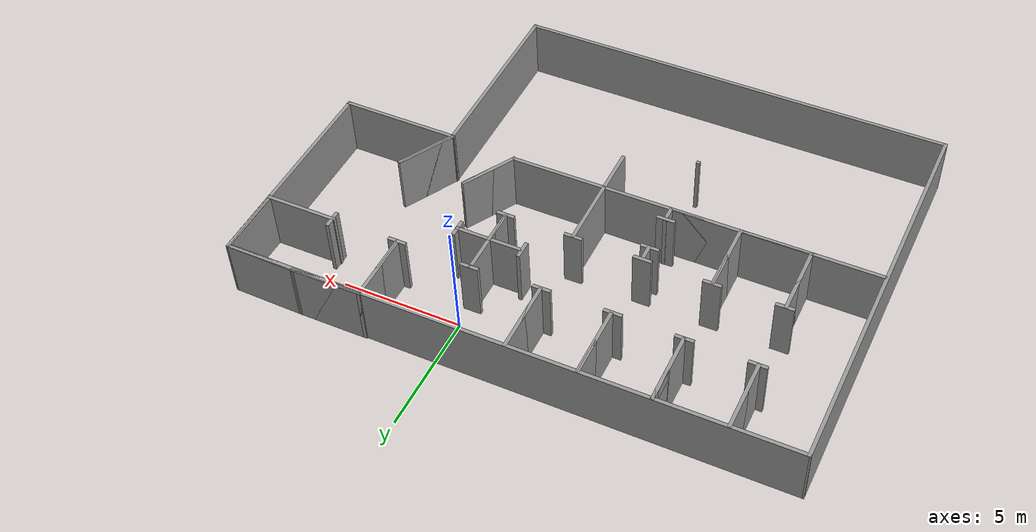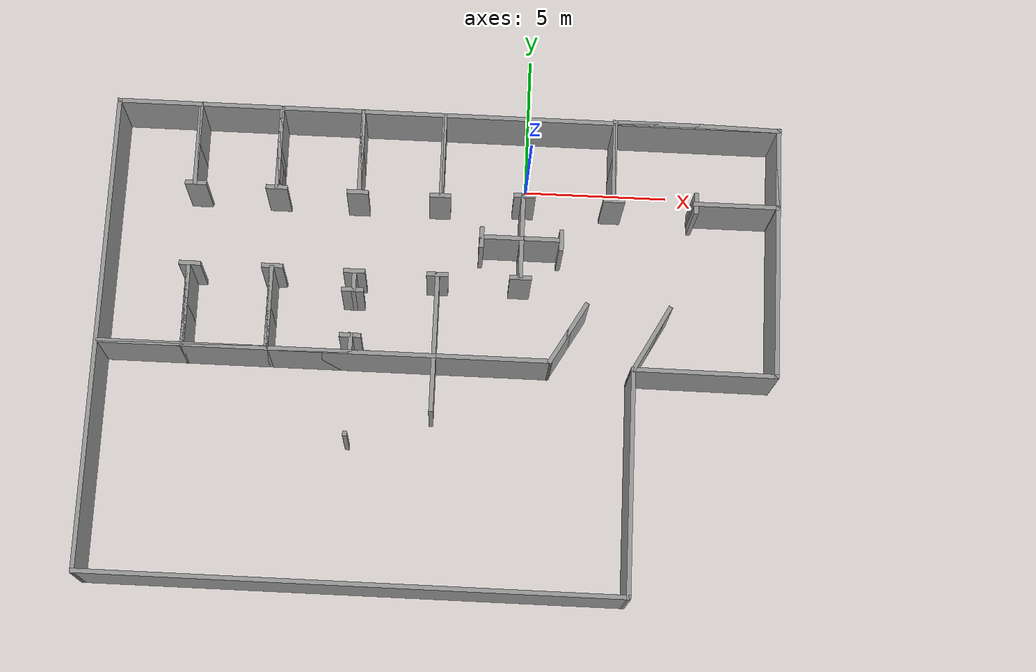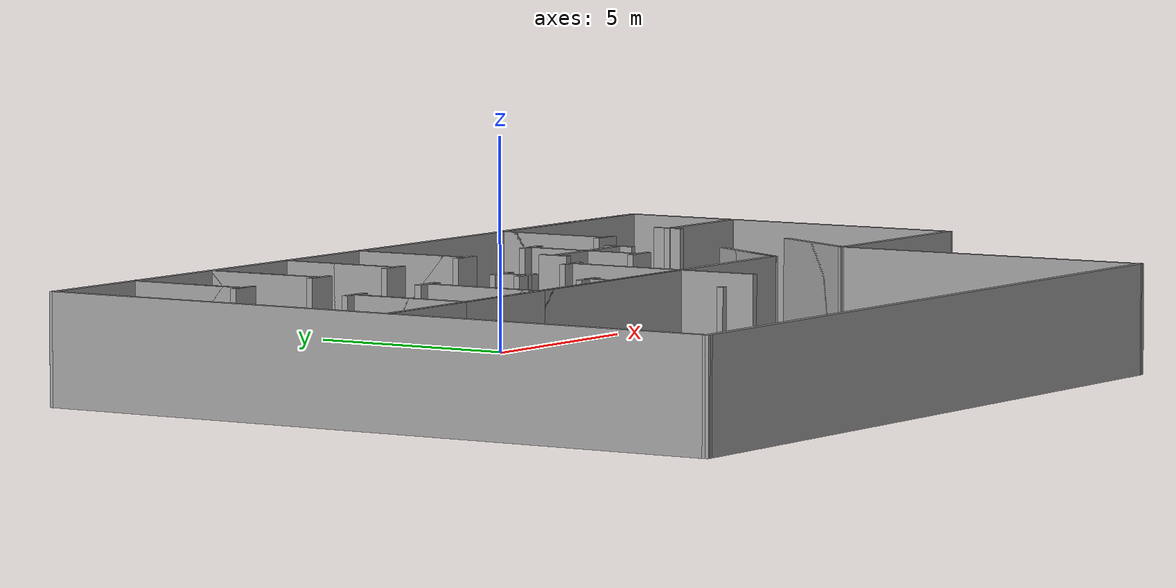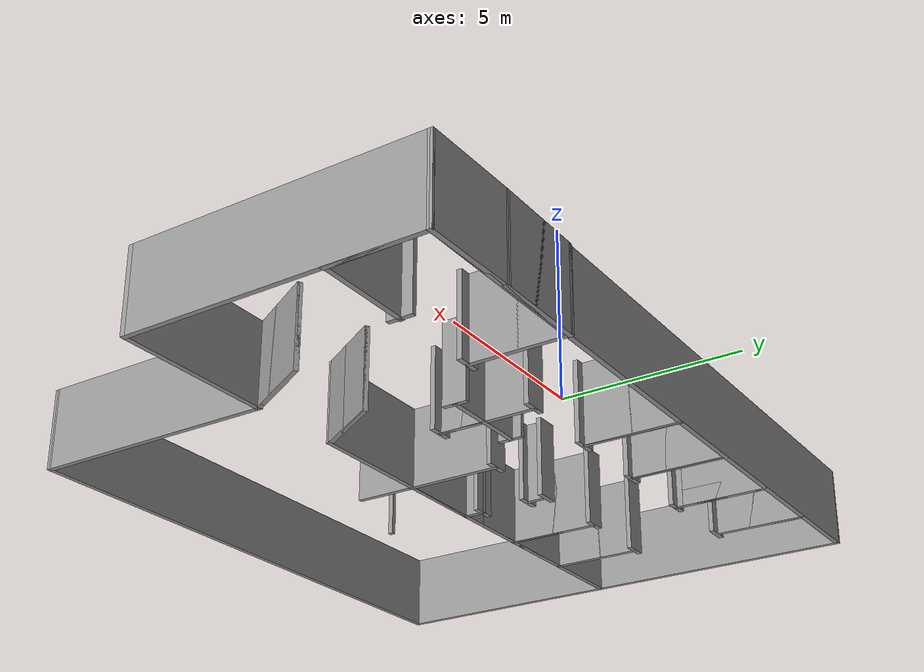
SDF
<?xml version='1.0'?>
<sdf version='1.7'>
  <model name='test_office'>
    <pose>-2.93967 -6.34863 0 0 -0 0</pose>
    <link name='Wall_10'>
      <collision name='Wall_10_Collision'>
        <geometry>
          <box>
            <size>3 0.15 2.5</size>
          </box>
        </geometry>
        <pose>0 0 1.25 0 -0 0</pose>
      </collision>
      <visual name='Wall_10_Visual'>
        <pose>0 0 1.25 0 -0 0</pose>
        <geometry>
          <box>
            <size>3 0.15 2.5</size>
          </box>
        </geometry>
        <material>
          <script>
            <uri>file://media/materials/scripts/gazebo.material</uri>
            <name>Gazebo/Grey</name>
          </script>
          <ambient>1 1 1 1</ambient>
        </material>
        <meta>
          <layer>0</layer>
        </meta>
      </visual>
      <pose>-8.61983 6.80013 0 0 -0 -1.5708</pose>
    </link>
    <link name='Wall_106'>
      <collision name='Wall_106_Collision'>
        <geometry>
          <box>
            <size>3.00965 0.15 2.5</size>
          </box>
        </geometry>
        <pose>0 0 1.25 0 -0 0</pose>
      </collision>
      <visual name='Wall_106_Visual'>
        <pose>0 0 1.25 0 -0 0</pose>
        <geometry>
          <box>
            <size>3.00965 0.15 2.5</size>
          </box>
        </geometry>
        <material>
          <script>
            <uri>file://media/materials/scripts/gazebo.material</uri>
            <name>Gazebo/Grey</name>
          </script>
          <ambient>1 1 1 1</ambient>
        </material>
        <meta>
          <layer>0</layer>
        </meta>
      </visual>
      <pose>10.1746 8.24774 0 0 -0 3.12244</pose>
    </link>
    <link name='Wall_11'>
      <collision name='Wall_11_Collision'>
        <geometry>
          <box>
            <size>3 0.15 2.5</size>
          </box>
        </geometry>
        <pose>0 0 1.25 0 -0 0</pose>
      </collision>
      <visual name='Wall_11_Visual'>
        <pose>0 0 1.25 0 -0 0</pose>
        <geometry>
          <box>
            <size>3 0.15 2.5</size>
          </box>
        </geometry>
        <material>
          <script>
            <uri>file://media/materials/scripts/gazebo.material</uri>
            <name>Gazebo/Grey</name>
          </script>
          <ambient>1 1 1 1</ambient>
        </material>
        <meta>
          <layer>0</layer>
        </meta>
      </visual>
      <pose>-8.61983 6.80013 0 0 -0 1.5708</pose>
    </link>
    <link name='Wall_114'>
      <collision name='Wall_114_Collision'>
        <geometry>
          <box>
            <size>7.85634 0.15 2.5</size>
          </box>
        </geometry>
        <pose>0 0 1.25 0 -0 0</pose>
      </collision>
      <visual name='Wall_114_Visual'>
        <pose>0 0 1.25 0 -0 0</pose>
        <geometry>
          <box>
            <size>7.85634 0.15 2.5</size>
          </box>
        </geometry>
        <material>
          <script>
            <uri>file://media/materials/scripts/gazebo.material</uri>
            <name>Gazebo/Grey</name>
          </script>
          <ambient>1 1 1 1</ambient>
        </material>
        <meta>
          <layer>0</layer>
        </meta>
      </visual>
      <pose>6.73701 -4.42285 0 0 -0 -1.56872</pose>
    </link>
    <link name='Wall_115'>
      <collision name='Wall_115_Collision'>
        <geometry>
          <box>
            <size>18.5 0.15 2.5</size>
          </box>
        </geometry>
        <pose>0 0 1.25 0 -0 0</pose>
      </collision>
      <visual name='Wall_115_Visual'>
        <pose>0 0 1.25 0 -0 0</pose>
        <geometry>
          <box>
            <size>18.5 0.15 2.5</size>
          </box>
        </geometry>
        <material>
          <script>
            <uri>file://media/materials/scripts/gazebo.material</uri>
            <name>Gazebo/Grey</name>
          </script>
          <ambient>1 1 1 1</ambient>
        </material>
        <meta>
          <layer>0</layer>
        </meta>
      </visual>
      <pose>-2.43001 -8.27601 0 0 -0 3.14159</pose>
    </link>
    <link name='Wall_118'>
      <collision name='Wall_118_Collision'>
        <geometry>
          <box>
            <size>3 0.15 2.5</size>
          </box>
        </geometry>
        <pose>0 0 1.25 0 -0 0</pose>
      </collision>
      <visual name='Wall_118_Visual'>
        <pose>0 0 1.25 0 -0 0</pose>
        <geometry>
          <box>
            <size>3 0.15 2.5</size>
          </box>
        </geometry>
        <material>
          <script>
            <uri>file://media/materials/scripts/gazebo.material</uri>
            <name>Gazebo/Grey</name>
          </script>
          <ambient>1 1 1 1</ambient>
        </material>
        <meta>
          <layer>0</layer>
        </meta>
      </visual>
      <pose>7.31999 8.27512 0 0 -0 3.14159</pose>
    </link>
    <link name='Wall_119'>
      <collision name='Wall_119_Collision'>
        <geometry>
          <box>
            <size>3 0.15 2.5</size>
          </box>
        </geometry>
        <pose>0 0 1.25 0 -0 0</pose>
      </collision>
      <visual name='Wall_119_Visual'>
        <pose>0 0 1.25 0 -0 0</pose>
        <geometry>
          <box>
            <size>3 0.15 2.5</size>
          </box>
        </geometry>
        <material>
          <script>
            <uri>file://media/materials/scripts/gazebo.material</uri>
            <name>Gazebo/Grey</name>
          </script>
          <ambient>1 1 1 1</ambient>
        </material>
        <meta>
          <layer>0</layer>
        </meta>
      </visual>
      <pose>5.89499 6.85013 0 0 -0 -1.5708</pose>
    </link>
    <link name='Wall_120'>
      <collision name='Wall_120_Collision'>
        <geometry>
          <box>
            <size>3 0.15 2.5</size>
          </box>
        </geometry>
        <pose>0 0 1.25 0 -0 0</pose>
      </collision>
      <visual name='Wall_120_Visual'>
        <pose>0 0 1.25 0 -0 0</pose>
        <geometry>
          <box>
            <size>3 0.15 2.5</size>
          </box>
        </geometry>
        <material>
          <script>
            <uri>file://media/materials/scripts/gazebo.material</uri>
            <name>Gazebo/Grey</name>
          </script>
          <ambient>1 1 1 1</ambient>
        </material>
        <meta>
          <layer>0</layer>
        </meta>
      </visual>
      <pose>5.89499 6.85013 0 0 -0 1.5708</pose>
    </link>
    <link name='Wall_121'>
      <collision name='Wall_121_Collision'>
        <geometry>
          <box>
            <size>3 0.15 2.5</size>
          </box>
        </geometry>
        <pose>0 0 1.25 0 -0 0</pose>
      </collision>
      <visual name='Wall_121_Visual'>
        <pose>0 0 1.25 0 -0 0</pose>
        <geometry>
          <box>
            <size>3 0.15 2.5</size>
          </box>
        </geometry>
        <material>
          <script>
            <uri>file://media/materials/scripts/gazebo.material</uri>
            <name>Gazebo/Grey</name>
          </script>
          <ambient>1 1 1 1</ambient>
        </material>
        <meta>
          <layer>0</layer>
        </meta>
      </visual>
      <pose>7.31999 8.27512 0 0 -0 0</pose>
    </link>
    <link name='Wall_129'>
      <collision name='Wall_129_Collision'>
        <geometry>
          <box>
            <size>2.98209 0.15 2.5</size>
          </box>
        </geometry>
        <pose>0 0 1.25 0 -0 0</pose>
      </collision>
      <visual name='Wall_129_Visual'>
        <pose>0 0 1.25 0 -0 0</pose>
        <geometry>
          <box>
            <size>2.98209 0.15 2.5</size>
          </box>
        </geometry>
        <material>
          <script>
            <uri>file://media/materials/scripts/gazebo.material</uri>
            <name>Gazebo/Grey</name>
          </script>
          <ambient>1 1 1 1</ambient>
        </material>
        <meta>
          <layer>0</layer>
        </meta>
      </visual>
      <pose>11.5904 6.80438 0 0 -0 -1.5805</pose>
    </link>
    <link name='Wall_13'>
      <collision name='Wall_13_Collision'>
        <geometry>
          <box>
            <size>3 0.15 2.5</size>
          </box>
        </geometry>
        <pose>0 0 1.25 0 -0 0</pose>
      </collision>
      <visual name='Wall_13_Visual'>
        <pose>0 0 1.25 0 -0 0</pose>
        <geometry>
          <box>
            <size>3 0.15 2.5</size>
          </box>
        </geometry>
        <material>
          <script>
            <uri>file://media/materials/scripts/gazebo.material</uri>
            <name>Gazebo/Grey</name>
          </script>
          <ambient>1 1 1 1</ambient>
        </material>
        <meta>
          <layer>0</layer>
        </meta>
      </visual>
      <pose>-5.76983 6.80013 0 0 -0 -1.5708</pose>
    </link>
    <link name='Wall_130'>
      <collision name='Wall_130_Collision'>
        <geometry>
          <box>
            <size>3 0.15 2.5</size>
          </box>
        </geometry>
        <pose>0 0 1.25 0 -0 0</pose>
      </collision>
      <visual name='Wall_130_Visual'>
        <pose>0 0 1.25 0 -0 0</pose>
        <geometry>
          <box>
            <size>3 0.15 2.5</size>
          </box>
        </geometry>
        <material>
          <script>
            <uri>file://media/materials/scripts/gazebo.material</uri>
            <name>Gazebo/Grey</name>
          </script>
          <ambient>1 1 1 1</ambient>
        </material>
        <meta>
          <layer>0</layer>
        </meta>
      </visual>
      <pose>10.1516 5.40677 0 0 -0 3.14159</pose>
    </link>
    <link name='Wall_134'>
      <collision name='Wall_134_Collision'>
        <geometry>
          <box>
            <size>0.75 0.15 2.5</size>
          </box>
        </geometry>
        <pose>0 0 1.25 0 -0 0</pose>
      </collision>
      <visual name='Wall_134_Visual'>
        <pose>0 0 1.25 0 -0 0</pose>
        <geometry>
          <box>
            <size>0.75 0.15 2.5</size>
          </box>
        </geometry>
        <material>
          <script>
            <uri>file://media/materials/scripts/gazebo.material</uri>
            <name>Gazebo/Grey</name>
          </script>
          <ambient>1 1 1 1</ambient>
        </material>
        <meta>
          <layer>0</layer>
        </meta>
      </visual>
      <pose>-8.58936 5.35933 0 0 -0 0</pose>
    </link>
    <link name='Wall_138'>
      <collision name='Wall_138_Collision'>
        <geometry>
          <box>
            <size>0.75 0.15 2.5</size>
          </box>
        </geometry>
        <pose>0 0 1.25 0 -0 0</pose>
      </collision>
      <visual name='Wall_138_Visual'>
        <pose>0 0 1.25 0 -0 0</pose>
        <geometry>
          <box>
            <size>0.75 0.15 2.5</size>
          </box>
        </geometry>
        <material>
          <script>
            <uri>file://media/materials/scripts/gazebo.material</uri>
            <name>Gazebo/Grey</name>
          </script>
          <ambient>1 1 1 1</ambient>
        </material>
        <meta>
          <layer>0</layer>
        </meta>
      </visual>
      <pose>-5.78208 5.32882 0 0 -0 0</pose>
    </link>
    <link name='Wall_14'>
      <pose>-5.76983 6.80013 0 0 -0 1.5708</pose>
      <visual name='Wall_14_Visual_0'>
        <pose>-1.35548 0 1.25 0 -0 0</pose>
        <geometry>
          <box>
            <size>0.289042 0.15 2.5</size>
          </box>
        </geometry>
        <material>
          <script>
            <uri>file://media/materials/scripts/gazebo.material</uri>
            <name>Gazebo/Grey</name>
          </script>
          <ambient>1 1 1 1</ambient>
        </material>
        <meta>
          <layer>0</layer>
        </meta>
      </visual>
      <collision name='Wall_14_Collision_0'>
        <geometry>
          <box>
            <size>0.289042 0.15 2.5</size>
          </box>
        </geometry>
        <pose>-1.35548 0 1.25 0 -0 0</pose>
      </collision>
      <visual name='Wall_14_Visual_1'>
        <pose>1.28988 0 1.25 0 -0 0</pose>
        <geometry>
          <box>
            <size>0.42023 0.15 2.5</size>
          </box>
        </geometry>
        <material>
          <script>
            <uri>file://media/materials/scripts/gazebo.material</uri>
            <name>Gazebo/Grey</name>
          </script>
          <ambient>1 1 1 1</ambient>
        </material>
        <meta>
          <layer>0</layer>
        </meta>
      </visual>
      <collision name='Wall_14_Collision_1'>
        <geometry>
          <box>
            <size>0.42023 0.15 2.5</size>
          </box>
        </geometry>
        <pose>1.28988 0 1.25 0 -0 0</pose>
      </collision>
      <visual name='Wall_14_Visual_2'>
        <pose>-0.515594 0 0.25 0 -0 0</pose>
        <geometry>
          <box>
            <size>1.39073 0.15 0.5</size>
          </box>
        </geometry>
        <material>
          <script>
            <uri>file://media/materials/scripts/gazebo.material</uri>
            <name>Gazebo/Grey</name>
          </script>
          <ambient>1 1 1 1</ambient>
        </material>
        <meta>
          <layer>0</layer>
        </meta>
      </visual>
      <collision name='Wall_14_Collision_2'>
        <geometry>
          <box>
            <size>1.39073 0.15 0.5</size>
          </box>
        </geometry>
        <pose>-0.515594 0 0.25 0 -0 0</pose>
      </collision>
      <visual name='Wall_14_Visual_3'>
        <pose>-0.115594 0 1.5 0 -0 0</pose>
        <geometry>
          <box>
            <size>0.590728 0.15 2</size>
          </box>
        </geometry>
        <material>
          <script>
            <uri>file://media/materials/scripts/gazebo.material</uri>
            <name>Gazebo/Grey</name>
          </script>
          <ambient>1 1 1 1</ambient>
        </material>
        <meta>
          <layer>0</layer>
        </meta>
      </visual>
      <collision name='Wall_14_Collision_3'>
        <geometry>
          <box>
            <size>0.590728 0.15 2</size>
          </box>
        </geometry>
        <pose>-0.115594 0 1.5 0 -0 0</pose>
      </collision>
      <visual name='Wall_14_Visual_4'>
        <pose>-0.810958 0 1.9 0 -0 0</pose>
        <geometry>
          <box>
            <size>0.8 0.15 1.2</size>
          </box>
        </geometry>
        <material>
          <script>
            <uri>file://media/materials/scripts/gazebo.material</uri>
            <name>Gazebo/Grey</name>
          </script>
          <ambient>1 1 1 1</ambient>
        </material>
        <meta>
          <layer>0</layer>
        </meta>
      </visual>
      <collision name='Wall_14_Collision_4'>
        <geometry>
          <box>
            <size>0.8 0.15 1.2</size>
          </box>
        </geometry>
        <pose>-0.810958 0 1.9 0 -0 0</pose>
      </collision>
      <visual name='Wall_14_Visual_5'>
        <pose>0.62977 0 2.25 0 -0 0</pose>
        <geometry>
          <box>
            <size>0.9 0.15 0.5</size>
          </box>
        </geometry>
        <material>
          <script>
            <uri>file://media/materials/scripts/gazebo.material</uri>
            <name>Gazebo/Grey</name>
          </script>
          <ambient>1 1 1 1</ambient>
        </material>
        <meta>
          <layer>0</layer>
        </meta>
      </visual>
      <collision name='Wall_14_Collision_5'>
        <geometry>
          <box>
            <size>0.9 0.15 0.5</size>
          </box>
        </geometry>
        <pose>0.62977 0 2.25 0 -0 0</pose>
      </collision>
    </link>
    <link name='Wall_143'>
      <collision name='Wall_143_Collision'>
        <geometry>
          <box>
            <size>0.75 0.15 2.5</size>
          </box>
        </geometry>
        <pose>0 0 1.25 0 -0 0</pose>
      </collision>
      <visual name='Wall_143_Visual'>
        <pose>0 0 1.25 0 -0 0</pose>
        <geometry>
          <box>
            <size>0.75 0.15 2.5</size>
          </box>
        </geometry>
        <material>
          <script>
            <uri>file://media/materials/scripts/gazebo.material</uri>
            <name>Gazebo/Grey</name>
          </script>
          <ambient>1 1 1 1</ambient>
        </material>
        <meta>
          <layer>0</layer>
        </meta>
      </visual>
      <pose>-5.74128 2.49102 0 0 -0 3.14159</pose>
    </link>
    <link name='Wall_145'>
      <collision name='Wall_145_Collision'>
        <geometry>
          <box>
            <size>0.75 0.15 2.5</size>
          </box>
        </geometry>
        <pose>0 0 1.25 0 -0 0</pose>
      </collision>
      <visual name='Wall_145_Visual'>
        <pose>0 0 1.25 0 -0 0</pose>
        <geometry>
          <box>
            <size>0.75 0.15 2.5</size>
          </box>
        </geometry>
        <material>
          <script>
            <uri>file://media/materials/scripts/gazebo.material</uri>
            <name>Gazebo/Grey</name>
          </script>
          <ambient>1 1 1 1</ambient>
        </material>
        <meta>
          <layer>0</layer>
        </meta>
      </visual>
      <pose>-8.56891 2.45033 0 0 -0 3.14159</pose>
    </link>
    <link name='Wall_148'>
      <collision name='Wall_148_Collision'>
        <geometry>
          <box>
            <size>0.75 0.15 2.5</size>
          </box>
        </geometry>
        <pose>0 0 1.25 0 -0 0</pose>
      </collision>
      <visual name='Wall_148_Visual'>
        <pose>0 0 1.25 0 -0 0</pose>
        <geometry>
          <box>
            <size>0.75 0.15 2.5</size>
          </box>
        </geometry>
        <material>
          <script>
            <uri>file://media/materials/scripts/gazebo.material</uri>
            <name>Gazebo/Grey</name>
          </script>
          <ambient>1 1 1 1</ambient>
        </material>
        <meta>
          <layer>0</layer>
        </meta>
      </visual>
      <pose>-2.96629 5.28715 0 0 -0 3.14159</pose>
    </link>
    <link name='Wall_150'>
      <collision name='Wall_150_Collision'>
        <geometry>
          <box>
            <size>0.75 0.15 2.5</size>
          </box>
        </geometry>
        <pose>0 0 1.25 0 -0 0</pose>
      </collision>
      <visual name='Wall_150_Visual'>
        <pose>0 0 1.25 0 -0 0</pose>
        <geometry>
          <box>
            <size>0.75 0.15 2.5</size>
          </box>
        </geometry>
        <material>
          <script>
            <uri>file://media/materials/scripts/gazebo.material</uri>
            <name>Gazebo/Grey</name>
          </script>
          <ambient>1 1 1 1</ambient>
        </material>
        <meta>
          <layer>0</layer>
        </meta>
      </visual>
      <pose>-2.91248 2.43541 0 0 -0 3.14159</pose>
    </link>
    <link name='Wall_152'>
      <collision name='Wall_152_Collision'>
        <geometry>
          <box>
            <size>0.75 0.15 2.5</size>
          </box>
        </geometry>
        <pose>0 0 1.25 0 -0 0</pose>
      </collision>
      <visual name='Wall_152_Visual'>
        <pose>0 0 1.25 0 -0 0</pose>
        <geometry>
          <box>
            <size>0.75 0.15 2.5</size>
          </box>
        </geometry>
        <material>
          <script>
            <uri>file://media/materials/scripts/gazebo.material</uri>
            <name>Gazebo/Grey</name>
          </script>
          <ambient>1 1 1 1</ambient>
        </material>
        <meta>
          <layer>0</layer>
        </meta>
      </visual>
      <pose>-2.92593 0.162097 0 0 -0 3.14159</pose>
    </link>
    <link name='Wall_155'>
      <collision name='Wall_155_Collision'>
        <geometry>
          <box>
            <size>0.75 0.15 2.5</size>
          </box>
        </geometry>
        <pose>0 0 1.25 0 -0 0</pose>
      </collision>
      <visual name='Wall_155_Visual'>
        <pose>0 0 1.25 0 -0 0</pose>
        <geometry>
          <box>
            <size>0.75 0.15 2.5</size>
          </box>
        </geometry>
        <material>
          <script>
            <uri>file://media/materials/scripts/gazebo.material</uri>
            <name>Gazebo/Grey</name>
          </script>
          <ambient>1 1 1 1</ambient>
        </material>
        <meta>
          <layer>0</layer>
        </meta>
      </visual>
      <pose>-2.93938 1.77629 0 0 -0 3.14159</pose>
    </link>
    <link name='Wall_16'>
      <collision name='Wall_16_Collision'>
        <geometry>
          <box>
            <size>3 0.15 2.5</size>
          </box>
        </geometry>
        <pose>0 0 1.25 0 -0 0</pose>
      </collision>
      <visual name='Wall_16_Visual'>
        <pose>0 0 1.25 0 -0 0</pose>
        <geometry>
          <box>
            <size>3 0.15 2.5</size>
          </box>
        </geometry>
        <material>
          <script>
            <uri>file://media/materials/scripts/gazebo.material</uri>
            <name>Gazebo/Grey</name>
          </script>
          <ambient>1 1 1 1</ambient>
        </material>
        <meta>
          <layer>0</layer>
        </meta>
      </visual>
      <pose>-2.91983 6.80013 0 0 -0 -1.5708</pose>
    </link>
    <link name='Wall_160'>
      <collision name='Wall_160_Collision'>
        <geometry>
          <box>
            <size>0.75 0.15 2.5</size>
          </box>
        </geometry>
        <pose>0 0 1.25 0 -0 0</pose>
      </collision>
      <visual name='Wall_160_Visual'>
        <pose>0 0 1.25 0 -0 0</pose>
        <geometry>
          <box>
            <size>0.75 0.15 2.5</size>
          </box>
        </geometry>
        <material>
          <script>
            <uri>file://media/materials/scripts/gazebo.material</uri>
            <name>Gazebo/Grey</name>
          </script>
          <ambient>1 1 1 1</ambient>
        </material>
        <meta>
          <layer>0</layer>
        </meta>
      </visual>
      <pose>-0.098641 5.29849 0 0 -0 3.14159</pose>
    </link>
    <link name='Wall_162'>
      <collision name='Wall_162_Collision'>
        <geometry>
          <box>
            <size>0.75 0.15 2.5</size>
          </box>
        </geometry>
        <pose>0 0 1.25 0 -0 0</pose>
      </collision>
      <visual name='Wall_162_Visual'>
        <pose>0 0 1.25 0 -0 0</pose>
        <geometry>
          <box>
            <size>0.75 0.15 2.5</size>
          </box>
        </geometry>
        <material>
          <script>
            <uri>file://media/materials/scripts/gazebo.material</uri>
            <name>Gazebo/Grey</name>
          </script>
          <ambient>1 1 1 1</ambient>
        </material>
        <meta>
          <layer>0</layer>
        </meta>
      </visual>
      <pose>-0.060403 2.4536 0 0 -0 3.14159</pose>
    </link>
    <link name='Wall_168'>
      <collision name='Wall_168_Collision'>
        <geometry>
          <box>
            <size>0.75 0.15 2.5</size>
          </box>
        </geometry>
        <pose>0 0 1.25 0 -0 0</pose>
      </collision>
      <visual name='Wall_168_Visual'>
        <pose>0 0 1.25 0 -0 0</pose>
        <geometry>
          <box>
            <size>0.75 0.15 2.5</size>
          </box>
        </geometry>
        <material>
          <script>
            <uri>file://media/materials/scripts/gazebo.material</uri>
            <name>Gazebo/Grey</name>
          </script>
          <ambient>1 1 1 1</ambient>
        </material>
        <meta>
          <layer>0</layer>
        </meta>
      </visual>
      <pose>4.14779 3.86837 0 0 -0 -1.5708</pose>
    </link>
    <link name='Wall_17'>
      <collision name='Wall_17_Collision'>
        <geometry>
          <box>
            <size>3 0.15 2.5</size>
          </box>
        </geometry>
        <pose>0 0 1.25 0 -0 0</pose>
      </collision>
      <visual name='Wall_17_Visual'>
        <pose>0 0 1.25 0 -0 0</pose>
        <geometry>
          <box>
            <size>3 0.15 2.5</size>
          </box>
        </geometry>
        <material>
          <script>
            <uri>file://media/materials/scripts/gazebo.material</uri>
            <name>Gazebo/Grey</name>
          </script>
          <ambient>1 1 1 1</ambient>
        </material>
        <meta>
          <layer>0</layer>
        </meta>
      </visual>
      <pose>-2.91983 6.80013 0 0 -0 1.5708</pose>
    </link>
    <link name='Wall_170'>
      <collision name='Wall_170_Collision'>
        <geometry>
          <box>
            <size>0.75 0.15 2.5</size>
          </box>
        </geometry>
        <pose>0 0 1.25 0 -0 0</pose>
      </collision>
      <visual name='Wall_170_Visual'>
        <pose>0 0 1.25 0 -0 0</pose>
        <geometry>
          <box>
            <size>0.75 0.15 2.5</size>
          </box>
        </geometry>
        <material>
          <script>
            <uri>file://media/materials/scripts/gazebo.material</uri>
            <name>Gazebo/Grey</name>
          </script>
          <ambient>1 1 1 1</ambient>
        </material>
        <meta>
          <layer>0</layer>
        </meta>
      </visual>
      <pose>1.39967 3.85525 0 0 -0 -1.5708</pose>
    </link>
    <link name='Wall_173'>
      <collision name='Wall_173_Collision'>
        <geometry>
          <box>
            <size>0.15 0.15 2.5</size>
          </box>
        </geometry>
        <pose>0 0 1.25 0 -0 0</pose>
      </collision>
      <visual name='Wall_173_Visual'>
        <pose>0 0 1.25 0 -0 0</pose>
        <geometry>
          <box>
            <size>0.15 0.15 2.5</size>
          </box>
        </geometry>
        <material>
          <script>
            <uri>file://media/materials/scripts/gazebo.material</uri>
            <name>Gazebo/Grey</name>
          </script>
          <ambient>1 1 1 1</ambient>
        </material>
        <meta>
          <layer>0</layer>
        </meta>
      </visual>
      <pose>2.78017 2.52513 0 0 -0 0</pose>
    </link>
    <link name='Wall_181'>
      <collision name='Wall_181_Collision'>
        <geometry>
          <box>
            <size>0.75 0.15 2.5</size>
          </box>
        </geometry>
        <pose>0 0 1.25 0 -0 0</pose>
      </collision>
      <visual name='Wall_181_Visual'>
        <pose>0 0 1.25 0 -0 0</pose>
        <geometry>
          <box>
            <size>0.75 0.15 2.5</size>
          </box>
        </geometry>
        <material>
          <script>
            <uri>file://media/materials/scripts/gazebo.material</uri>
            <name>Gazebo/Grey</name>
          </script>
          <ambient>1 1 1 1</ambient>
        </material>
        <meta>
          <layer>0</layer>
        </meta>
      </visual>
      <pose>2.82459 5.43211 0 0 -0 0</pose>
    </link>
    <link name='Wall_183'>
      <collision name='Wall_183_Collision'>
        <geometry>
          <box>
            <size>0.75 0.15 2.5</size>
          </box>
        </geometry>
        <pose>0 0 1.25 0 -0 0</pose>
      </collision>
      <visual name='Wall_183_Visual'>
        <pose>0 0 1.25 0 -0 0</pose>
        <geometry>
          <box>
            <size>0.75 0.15 2.5</size>
          </box>
        </geometry>
        <material>
          <script>
            <uri>file://media/materials/scripts/gazebo.material</uri>
            <name>Gazebo/Grey</name>
          </script>
          <ambient>1 1 1 1</ambient>
        </material>
        <meta>
          <layer>0</layer>
        </meta>
      </visual>
      <pose>2.79407 2.47226 0 0 -0 0</pose>
    </link>
    <link name='Wall_187'>
      <collision name='Wall_187_Collision'>
        <geometry>
          <box>
            <size>0.75 0.15 2.5</size>
          </box>
        </geometry>
        <pose>0 0 1.25 0 -0 0</pose>
      </collision>
      <visual name='Wall_187_Visual'>
        <pose>0 0 1.25 0 -0 0</pose>
        <geometry>
          <box>
            <size>0.75 0.15 2.5</size>
          </box>
        </geometry>
        <material>
          <script>
            <uri>file://media/materials/scripts/gazebo.material</uri>
            <name>Gazebo/Grey</name>
          </script>
          <ambient>1 1 1 1</ambient>
        </material>
        <meta>
          <layer>0</layer>
        </meta>
      </visual>
      <pose>5.9249 5.40366 0 0 -0 0</pose>
    </link>
    <link name='Wall_189'>
      <collision name='Wall_189_Collision'>
        <geometry>
          <box>
            <size>0.75 0.15 2.5</size>
          </box>
        </geometry>
        <pose>0 0 1.25 0 -0 0</pose>
      </collision>
      <visual name='Wall_189_Visual'>
        <pose>0 0 1.25 0 -0 0</pose>
        <geometry>
          <box>
            <size>0.75 0.15 2.5</size>
          </box>
        </geometry>
        <material>
          <script>
            <uri>file://media/materials/scripts/gazebo.material</uri>
            <name>Gazebo/Grey</name>
          </script>
          <ambient>1 1 1 1</ambient>
        </material>
        <meta>
          <layer>0</layer>
        </meta>
      </visual>
      <pose>8.76248 5.4265 0 0 -0 -1.5708</pose>
    </link>
    <link name='Wall_19'>
      <collision name='Wall_19_Collision'>
        <geometry>
          <box>
            <size>3 0.15 2.5</size>
          </box>
        </geometry>
        <pose>0 0 1.25 0 -0 0</pose>
      </collision>
      <visual name='Wall_19_Visual'>
        <pose>0 0 1.25 0 -0 0</pose>
        <geometry>
          <box>
            <size>3 0.15 2.5</size>
          </box>
        </geometry>
        <material>
          <script>
            <uri>file://media/materials/scripts/gazebo.material</uri>
            <name>Gazebo/Grey</name>
          </script>
          <ambient>1 1 1 1</ambient>
        </material>
        <meta>
          <layer>0</layer>
        </meta>
      </visual>
      <pose>-0.069829 6.80013 0 0 -0 -1.5708</pose>
    </link>
    <link name='Wall_191'>
      <collision name='Wall_191_Collision'>
        <geometry>
          <box>
            <size>2 0.15 2.5</size>
          </box>
        </geometry>
        <pose>0 0 1.25 0 -0 0</pose>
      </collision>
      <visual name='Wall_191_Visual'>
        <pose>0 0 1.25 0 -0 0</pose>
        <geometry>
          <box>
            <size>2 0.15 2.5</size>
          </box>
        </geometry>
        <material>
          <script>
            <uri>file://media/materials/scripts/gazebo.material</uri>
            <name>Gazebo/Grey</name>
          </script>
          <ambient>1 1 1 1</ambient>
        </material>
        <meta>
          <layer>0</layer>
        </meta>
      </visual>
      <pose>-0.055008 -1.35101 0 0 -0 -1.5708</pose>
    </link>
    <link name='Wall_196'>
      <collision name='Wall_196_Collision'>
        <geometry>
          <box>
            <size>0.15 0.15 2.5</size>
          </box>
        </geometry>
        <pose>0 0 1.25 0 -0 0</pose>
      </collision>
      <visual name='Wall_196_Visual'>
        <pose>0 0 1.25 0 -0 0</pose>
        <geometry>
          <box>
            <size>0.15 0.15 2.5</size>
          </box>
        </geometry>
        <material>
          <script>
            <uri>file://media/materials/scripts/gazebo.material</uri>
            <name>Gazebo/Grey</name>
          </script>
          <ambient>1 1 1 1</ambient>
        </material>
        <meta>
          <layer>0</layer>
        </meta>
      </visual>
      <pose>-2.90501 -3.24809 0 0 -0 0</pose>
    </link>
    <link name='Wall_20'>
      <collision name='Wall_20_Collision'>
        <geometry>
          <box>
            <size>3 0.15 2.5</size>
          </box>
        </geometry>
        <pose>0 0 1.25 0 -0 0</pose>
      </collision>
      <visual name='Wall_20_Visual'>
        <pose>0 0 1.25 0 -0 0</pose>
        <geometry>
          <box>
            <size>3 0.15 2.5</size>
          </box>
        </geometry>
        <material>
          <script>
            <uri>file://media/materials/scripts/gazebo.material</uri>
            <name>Gazebo/Grey</name>
          </script>
          <ambient>1 1 1 1</ambient>
        </material>
        <meta>
          <layer>0</layer>
        </meta>
      </visual>
      <pose>-0.069829 6.80013 0 0 -0 1.5708</pose>
    </link>
    <link name='Wall_205'>
      <collision name='Wall_205_Collision'>
        <geometry>
          <box>
            <size>16.6833 0.15 2.5</size>
          </box>
        </geometry>
        <pose>0 0 1.25 0 -0 0</pose>
      </collision>
      <visual name='Wall_205_Visual'>
        <pose>0 0 1.25 0 -0 0</pose>
        <geometry>
          <box>
            <size>16.6833 0.15 2.5</size>
          </box>
        </geometry>
        <material>
          <script>
            <uri>file://media/materials/scripts/gazebo.material</uri>
            <name>Gazebo/Grey</name>
          </script>
          <ambient>1 1 1 1</ambient>
        </material>
        <meta>
          <layer>0</layer>
        </meta>
      </visual>
      <pose>-11.5459 -0.009572 0 0 -0 1.56364</pose>
    </link>
    <link name='Wall_24'>
      <collision name='Wall_24_Collision'>
        <geometry>
          <box>
            <size>0.15 0.15 2.5</size>
          </box>
        </geometry>
        <pose>0 0 1.25 0 -0 0</pose>
      </collision>
      <visual name='Wall_24_Visual'>
        <pose>0 0 1.25 0 -0 0</pose>
        <geometry>
          <box>
            <size>0.15 0.15 2.5</size>
          </box>
        </geometry>
        <material>
          <script>
            <uri>file://media/materials/scripts/gazebo.material</uri>
            <name>Gazebo/Grey</name>
          </script>
          <ambient>1 1 1 1</ambient>
        </material>
        <meta>
          <layer>0</layer>
        </meta>
      </visual>
      <pose>2.78017 5.40571 0 0 -0 0</pose>
    </link>
    <link name='Wall_25'>
      <collision name='Wall_25_Collision'>
        <geometry>
          <box>
            <size>3.03059 0.15 2.5</size>
          </box>
        </geometry>
        <pose>0 0 1.25 0 -0 0</pose>
      </collision>
      <visual name='Wall_25_Visual'>
        <pose>0 0 1.25 0 -0 0</pose>
        <geometry>
          <box>
            <size>3.03059 0.15 2.5</size>
          </box>
        </geometry>
        <material>
          <script>
            <uri>file://media/materials/scripts/gazebo.material</uri>
            <name>Gazebo/Grey</name>
          </script>
          <ambient>1 1 1 1</ambient>
        </material>
        <meta>
          <layer>0</layer>
        </meta>
      </visual>
      <pose>2.78017 3.96542 0 0 -0 -1.5708</pose>
    </link>
    <link name='Wall_26'>
      <collision name='Wall_26_Collision'>
        <geometry>
          <box>
            <size>1.5 0.15 2.5</size>
          </box>
        </geometry>
        <pose>0 0 1.25 0 -0 0</pose>
      </collision>
      <visual name='Wall_26_Visual'>
        <pose>0 0 1.25 0 -0 0</pose>
        <geometry>
          <box>
            <size>1.5 0.15 2.5</size>
          </box>
        </geometry>
        <material>
          <script>
            <uri>file://media/materials/scripts/gazebo.material</uri>
            <name>Gazebo/Grey</name>
          </script>
          <ambient>1 1 1 1</ambient>
        </material>
        <meta>
          <layer>0</layer>
        </meta>
      </visual>
      <pose>2.78017 3.20012 0 0 -0 1.5708</pose>
    </link>
    <link name='Wall_27'>
      <collision name='Wall_27_Collision'>
        <geometry>
          <box>
            <size>1.5 0.15 2.5</size>
          </box>
        </geometry>
        <pose>0 0 1.25 0 -0 0</pose>
      </collision>
      <visual name='Wall_27_Visual'>
        <pose>0 0 1.25 0 -0 0</pose>
        <geometry>
          <box>
            <size>1.5 0.15 2.5</size>
          </box>
        </geometry>
        <material>
          <script>
            <uri>file://media/materials/scripts/gazebo.material</uri>
            <name>Gazebo/Grey</name>
          </script>
          <ambient>1 1 1 1</ambient>
        </material>
        <meta>
          <layer>0</layer>
        </meta>
      </visual>
      <pose>2.10517 3.87513 0 0 -0 3.14159</pose>
    </link>
    <link name='Wall_29'>
      <collision name='Wall_29_Collision'>
        <geometry>
          <box>
            <size>0.15 0.15 2.5</size>
          </box>
        </geometry>
        <pose>0 0 1.25 0 -0 0</pose>
      </collision>
      <visual name='Wall_29_Visual'>
        <pose>0 0 1.25 0 -0 0</pose>
        <geometry>
          <box>
            <size>0.15 0.15 2.5</size>
          </box>
        </geometry>
        <material>
          <script>
            <uri>file://media/materials/scripts/gazebo.material</uri>
            <name>Gazebo/Grey</name>
          </script>
          <ambient>1 1 1 1</ambient>
        </material>
        <meta>
          <layer>0</layer>
        </meta>
      </visual>
      <pose>2.78017 3.87513 0 0 -0 0</pose>
    </link>
    <link name='Wall_30'>
      <collision name='Wall_30_Collision'>
        <geometry>
          <box>
            <size>1.5 0.15 2.5</size>
          </box>
        </geometry>
        <pose>0 0 1.25 0 -0 0</pose>
      </collision>
      <visual name='Wall_30_Visual'>
        <pose>0 0 1.25 0 -0 0</pose>
        <geometry>
          <box>
            <size>1.5 0.15 2.5</size>
          </box>
        </geometry>
        <material>
          <script>
            <uri>file://media/materials/scripts/gazebo.material</uri>
            <name>Gazebo/Grey</name>
          </script>
          <ambient>1 1 1 1</ambient>
        </material>
        <meta>
          <layer>0</layer>
        </meta>
      </visual>
      <pose>3.45517 3.87513 0 0 -0 0</pose>
    </link>
    <link name='Wall_32'>
      <collision name='Wall_32_Collision'>
        <geometry>
          <box>
            <size>1.5 0.15 2.5</size>
          </box>
        </geometry>
        <pose>0 0 1.25 0 -0 0</pose>
      </collision>
      <visual name='Wall_32_Visual'>
        <pose>0 0 1.25 0 -0 0</pose>
        <geometry>
          <box>
            <size>1.5 0.15 2.5</size>
          </box>
        </geometry>
        <material>
          <script>
            <uri>file://media/materials/scripts/gazebo.material</uri>
            <name>Gazebo/Grey</name>
          </script>
          <ambient>1 1 1 1</ambient>
        </material>
        <meta>
          <layer>0</layer>
        </meta>
      </visual>
      <pose>2.78017 3.20012 0 0 -0 -1.5708</pose>
    </link>
    <link name='Wall_56'>
      <collision name='Wall_56_Collision'>
        <geometry>
          <box>
            <size>8.95837 0.15 2.5</size>
          </box>
        </geometry>
        <pose>0 0 1.25 0 -0 0</pose>
      </collision>
      <visual name='Wall_56_Visual'>
        <pose>0 0 1.25 0 -0 0</pose>
        <geometry>
          <box>
            <size>8.95837 0.15 2.5</size>
          </box>
        </geometry>
        <material>
          <script>
            <uri>file://media/materials/scripts/gazebo.material</uri>
            <name>Gazebo/Grey</name>
          </script>
          <ambient>1 1 1 1</ambient>
        </material>
        <meta>
          <layer>0</layer>
        </meta>
      </visual>
      <pose>11.587 3.81621 0 0 -0 1.56691</pose>
    </link>
    <link name='Wall_58'>
      <collision name='Wall_58_Collision'>
        <geometry>
          <box>
            <size>23.2409 0.15 2.5</size>
          </box>
        </geometry>
        <pose>0 0 1.25 0 -0 0</pose>
      </collision>
      <visual name='Wall_58_Visual'>
        <pose>0 0 1.25 0 -0 0</pose>
        <geometry>
          <box>
            <size>23.2409 0.15 2.5</size>
          </box>
        </geometry>
        <material>
          <script>
            <uri>file://media/materials/scripts/gazebo.material</uri>
            <name>Gazebo/Grey</name>
          </script>
          <ambient>1 1 1 1</ambient>
        </material>
        <meta>
          <layer>0</layer>
        </meta>
      </visual>
      <pose>0.058683 8.23861 0 0 -0 3.14001</pose>
    </link>
    <link name='Wall_71'>
      <collision name='Wall_71_Collision'>
        <geometry>
          <box>
            <size>4.99091 0.15 2.5</size>
          </box>
        </geometry>
        <pose>0 0 1.25 0 -0 0</pose>
      </collision>
      <visual name='Wall_71_Visual'>
        <pose>0 0 1.25 0 -0 0</pose>
        <geometry>
          <box>
            <size>4.99091 0.15 2.5</size>
          </box>
        </geometry>
        <material>
          <script>
            <uri>file://media/materials/scripts/gazebo.material</uri>
            <name>Gazebo/Grey</name>
          </script>
          <ambient>1 1 1 1</ambient>
        </material>
        <meta>
          <layer>0</layer>
        </meta>
      </visual>
      <pose>9.14946 -0.578818 0 0 -0 3.13782</pose>
    </link>
    <link name='Wall_72'>
      <collision name='Wall_72_Collision'>
        <geometry>
          <box>
            <size>2.63309 0.15 2.5</size>
          </box>
        </geometry>
        <pose>0 0 1.25 0 -0 0</pose>
      </collision>
      <visual name='Wall_72_Visual'>
        <pose>0 0 1.25 0 -0 0</pose>
        <geometry>
          <box>
            <size>2.63309 0.15 2.5</size>
          </box>
        </geometry>
        <material>
          <script>
            <uri>file://media/materials/scripts/gazebo.material</uri>
            <name>Gazebo/Grey</name>
          </script>
          <ambient>1 1 1 1</ambient>
        </material>
        <meta>
          <layer>0</layer>
        </meta>
      </visual>
      <pose>7.32451 0.519728 0 0 -0 1.07056</pose>
    </link>
    <link name='Wall_73'>
      <collision name='Wall_73_Collision'>
        <geometry>
          <box>
            <size>2.63309 0.15 2.5</size>
          </box>
        </geometry>
        <pose>0 0 1.25 0 -0 0</pose>
      </collision>
      <visual name='Wall_73_Visual'>
        <pose>0 0 1.25 0 -0 0</pose>
        <geometry>
          <box>
            <size>2.63309 0.15 2.5</size>
          </box>
        </geometry>
        <material>
          <script>
            <uri>file://media/materials/scripts/gazebo.material</uri>
            <name>Gazebo/Grey</name>
          </script>
          <ambient>1 1 1 1</ambient>
        </material>
        <meta>
          <layer>0</layer>
        </meta>
      </visual>
      <pose>7.32451 0.519728 0 0 -0 -2.07103</pose>
    </link>
    <link name='Wall_75'>
      <collision name='Wall_75_Collision'>
        <geometry>
          <box>
            <size>2.5 0.15 2.5</size>
          </box>
        </geometry>
        <pose>0 0 1.25 0 -0 0</pose>
      </collision>
      <visual name='Wall_75_Visual'>
        <pose>0 0 1.25 0 -0 0</pose>
        <geometry>
          <box>
            <size>2.5 0.15 2.5</size>
          </box>
        </geometry>
        <material>
          <script>
            <uri>file://media/materials/scripts/gazebo.material</uri>
            <name>Gazebo/Grey</name>
          </script>
          <ambient>1 1 1 1</ambient>
        </material>
        <meta>
          <layer>0</layer>
        </meta>
      </visual>
      <pose>4.48249 0.591566 0 0 -0 1.0472</pose>
    </link>
    <link name='Wall_76'>
      <collision name='Wall_76_Collision'>
        <geometry>
          <box>
            <size>2.5 0.15 2.5</size>
          </box>
        </geometry>
        <pose>0 0 1.25 0 -0 0</pose>
      </collision>
      <visual name='Wall_76_Visual'>
        <pose>0 0 1.25 0 -0 0</pose>
        <geometry>
          <box>
            <size>2.5 0.15 2.5</size>
          </box>
        </geometry>
        <material>
          <script>
            <uri>file://media/materials/scripts/gazebo.material</uri>
            <name>Gazebo/Grey</name>
          </script>
          <ambient>1 1 1 1</ambient>
        </material>
        <meta>
          <layer>0</layer>
        </meta>
      </visual>
      <pose>4.48249 0.591566 0 0 -0 -2.0944</pose>
    </link>
    <link name='Wall_77'>
      <collision name='Wall_77_Collision'>
        <geometry>
          <box>
            <size>15.5 0.15 2.5</size>
          </box>
        </geometry>
        <pose>0 0 1.25 0 -0 0</pose>
      </collision>
      <visual name='Wall_77_Visual'>
        <pose>0 0 1.25 0 -0 0</pose>
        <geometry>
          <box>
            <size>15.5 0.15 2.5</size>
          </box>
        </geometry>
        <material>
          <script>
            <uri>file://media/materials/scripts/gazebo.material</uri>
            <name>Gazebo/Grey</name>
          </script>
          <ambient>1 1 1 1</ambient>
        </material>
        <meta>
          <layer>0</layer>
        </meta>
      </visual>
      <pose>-3.78001 -0.426014 0 0 -0 3.14159</pose>
    </link>
    <link name='Wall_79'>
      <collision name='Wall_79_Collision'>
        <geometry>
          <box>
            <size>3 0.15 2.5</size>
          </box>
        </geometry>
        <pose>0 0 1.25 0 -0 0</pose>
      </collision>
      <visual name='Wall_79_Visual'>
        <pose>0 0 1.25 0 -0 0</pose>
        <geometry>
          <box>
            <size>3 0.15 2.5</size>
          </box>
        </geometry>
        <material>
          <script>
            <uri>file://media/materials/scripts/gazebo.material</uri>
            <name>Gazebo/Grey</name>
          </script>
          <ambient>1 1 1 1</ambient>
        </material>
        <meta>
          <layer>0</layer>
        </meta>
      </visual>
      <pose>-10.03 -0.426014 0 0 -0 0</pose>
    </link>
    <link name='Wall_80'>
      <collision name='Wall_80_Collision'>
        <geometry>
          <box>
            <size>3 0.15 2.5</size>
          </box>
        </geometry>
        <pose>0 0 1.25 0 -0 0</pose>
      </collision>
      <visual name='Wall_80_Visual'>
        <pose>0 0 1.25 0 -0 0</pose>
        <geometry>
          <box>
            <size>3 0.15 2.5</size>
          </box>
        </geometry>
        <material>
          <script>
            <uri>file://media/materials/scripts/gazebo.material</uri>
            <name>Gazebo/Grey</name>
          </script>
          <ambient>1 1 1 1</ambient>
        </material>
        <meta>
          <layer>0</layer>
        </meta>
      </visual>
      <pose>-8.60501 0.998986 0 0 -0 1.5708</pose>
    </link>
    <link name='Wall_81'>
      <collision name='Wall_81_Collision'>
        <geometry>
          <box>
            <size>3 0.15 2.5</size>
          </box>
        </geometry>
        <pose>0 0 1.25 0 -0 0</pose>
      </collision>
      <visual name='Wall_81_Visual'>
        <pose>0 0 1.25 0 -0 0</pose>
        <geometry>
          <box>
            <size>3 0.15 2.5</size>
          </box>
        </geometry>
        <material>
          <script>
            <uri>file://media/materials/scripts/gazebo.material</uri>
            <name>Gazebo/Grey</name>
          </script>
          <ambient>1 1 1 1</ambient>
        </material>
        <meta>
          <layer>0</layer>
        </meta>
      </visual>
      <pose>-8.60501 0.998986 0 0 -0 -1.5708</pose>
    </link>
    <link name='Wall_82'>
      <collision name='Wall_82_Collision'>
        <geometry>
          <box>
            <size>3 0.15 2.5</size>
          </box>
        </geometry>
        <pose>0 0 1.25 0 -0 0</pose>
      </collision>
      <visual name='Wall_82_Visual'>
        <pose>0 0 1.25 0 -0 0</pose>
        <geometry>
          <box>
            <size>3 0.15 2.5</size>
          </box>
        </geometry>
        <material>
          <script>
            <uri>file://media/materials/scripts/gazebo.material</uri>
            <name>Gazebo/Grey</name>
          </script>
          <ambient>1 1 1 1</ambient>
        </material>
        <meta>
          <layer>0</layer>
        </meta>
      </visual>
      <pose>-7.18001 -0.426014 0 0 -0 0</pose>
    </link>
    <link name='Wall_83'>
      <collision name='Wall_83_Collision'>
        <geometry>
          <box>
            <size>3 0.15 2.5</size>
          </box>
        </geometry>
        <pose>0 0 1.25 0 -0 0</pose>
      </collision>
      <visual name='Wall_83_Visual'>
        <pose>0 0 1.25 0 -0 0</pose>
        <geometry>
          <box>
            <size>3 0.15 2.5</size>
          </box>
        </geometry>
        <material>
          <script>
            <uri>file://media/materials/scripts/gazebo.material</uri>
            <name>Gazebo/Grey</name>
          </script>
          <ambient>1 1 1 1</ambient>
        </material>
        <meta>
          <layer>0</layer>
        </meta>
      </visual>
      <pose>-5.75501 0.998986 0 0 -0 1.5708</pose>
    </link>
    <link name='Wall_84'>
      <collision name='Wall_84_Collision'>
        <geometry>
          <box>
            <size>3 0.15 2.5</size>
          </box>
        </geometry>
        <pose>0 0 1.25 0 -0 0</pose>
      </collision>
      <visual name='Wall_84_Visual'>
        <pose>0 0 1.25 0 -0 0</pose>
        <geometry>
          <box>
            <size>3 0.15 2.5</size>
          </box>
        </geometry>
        <material>
          <script>
            <uri>file://media/materials/scripts/gazebo.material</uri>
            <name>Gazebo/Grey</name>
          </script>
          <ambient>1 1 1 1</ambient>
        </material>
        <meta>
          <layer>0</layer>
        </meta>
      </visual>
      <pose>-5.75501 0.998986 0 0 -0 -1.5708</pose>
    </link>
    <link name='Wall_85'>
      <collision name='Wall_85_Collision'>
        <geometry>
          <box>
            <size>3 0.15 2.5</size>
          </box>
        </geometry>
        <pose>0 0 1.25 0 -0 0</pose>
      </collision>
      <visual name='Wall_85_Visual'>
        <pose>0 0 1.25 0 -0 0</pose>
        <geometry>
          <box>
            <size>3 0.15 2.5</size>
          </box>
        </geometry>
        <material>
          <script>
            <uri>file://media/materials/scripts/gazebo.material</uri>
            <name>Gazebo/Grey</name>
          </script>
          <ambient>1 1 1 1</ambient>
        </material>
        <meta>
          <layer>0</layer>
        </meta>
      </visual>
      <pose>-4.33001 -0.426014 0 0 -0 0</pose>
    </link>
    <link name='Wall_86'>
      <collision name='Wall_86_Collision'>
        <geometry>
          <box>
            <size>0.75 0.15 2.5</size>
          </box>
        </geometry>
        <pose>0 0 1.25 0 -0 0</pose>
      </collision>
      <visual name='Wall_86_Visual'>
        <pose>0 0 1.25 0 -0 0</pose>
        <geometry>
          <box>
            <size>0.75 0.15 2.5</size>
          </box>
        </geometry>
        <material>
          <script>
            <uri>file://media/materials/scripts/gazebo.material</uri>
            <name>Gazebo/Grey</name>
          </script>
          <ambient>1 1 1 1</ambient>
        </material>
        <meta>
          <layer>0</layer>
        </meta>
      </visual>
      <pose>-2.90501 -0.126014 0 0 -0 1.5708</pose>
    </link>
    <link name='Wall_88'>
      <collision name='Wall_88_Collision'>
        <geometry>
          <box>
            <size>0.75 0.15 2.5</size>
          </box>
        </geometry>
        <pose>0 0 1.25 0 -0 0</pose>
      </collision>
      <visual name='Wall_88_Visual'>
        <pose>0 0 1.25 0 -0 0</pose>
        <geometry>
          <box>
            <size>0.75 0.15 2.5</size>
          </box>
        </geometry>
        <material>
          <script>
            <uri>file://media/materials/scripts/gazebo.material</uri>
            <name>Gazebo/Grey</name>
          </script>
          <ambient>1 1 1 1</ambient>
        </material>
        <meta>
          <layer>0</layer>
        </meta>
      </visual>
      <pose>-2.90501 2.07399 0 0 -0 1.5708</pose>
    </link>
    <link name='Wall_90'>
      <collision name='Wall_90_Collision'>
        <geometry>
          <box>
            <size>3 0.15 2.5</size>
          </box>
        </geometry>
        <pose>0 0 1.25 0 -0 0</pose>
      </collision>
      <visual name='Wall_90_Visual'>
        <pose>0 0 1.25 0 -0 0</pose>
        <geometry>
          <box>
            <size>3 0.15 2.5</size>
          </box>
        </geometry>
        <material>
          <script>
            <uri>file://media/materials/scripts/gazebo.material</uri>
            <name>Gazebo/Grey</name>
          </script>
          <ambient>1 1 1 1</ambient>
        </material>
        <meta>
          <layer>0</layer>
        </meta>
      </visual>
      <pose>-1.48001 -0.426014 0 0 -0 0</pose>
    </link>
    <link name='Wall_91'>
      <collision name='Wall_91_Collision'>
        <geometry>
          <box>
            <size>3 0.15 2.5</size>
          </box>
        </geometry>
        <pose>0 0 1.25 0 -0 0</pose>
      </collision>
      <visual name='Wall_91_Visual'>
        <pose>0 0 1.25 0 -0 0</pose>
        <geometry>
          <box>
            <size>3 0.15 2.5</size>
          </box>
        </geometry>
        <material>
          <script>
            <uri>file://media/materials/scripts/gazebo.material</uri>
            <name>Gazebo/Grey</name>
          </script>
          <ambient>1 1 1 1</ambient>
        </material>
        <meta>
          <layer>0</layer>
        </meta>
      </visual>
      <pose>-0.055008 0.998986 0 0 -0 1.5708</pose>
    </link>
    <static>1</static>
  </model>
</sdf>
